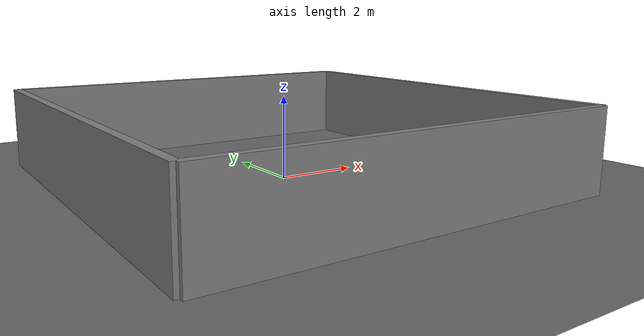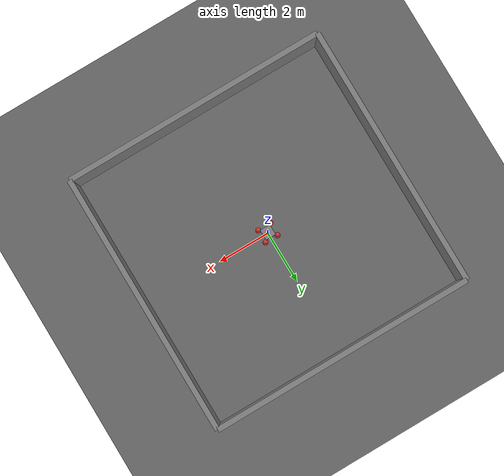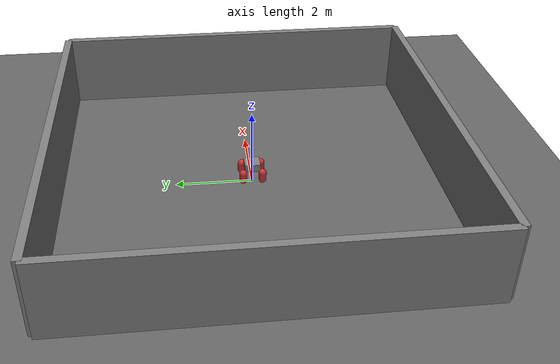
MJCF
<mujoco model="linked_balls">
  <compiler angle="degree" coordinate="local" inertiafromgeom="true"/>
  <option timestep="0.01" iterations="4"/>
  <custom>
    <!-- brax custom params -->
    <numeric data="1000" name="constraint_limit_stiffness"/>
    <numeric data="4000" name="constraint_stiffness"/>
    <numeric data="10" name="constraint_ang_damping"/>
    <numeric data="20" name="constraint_vel_damping"/>
    <numeric data="0.5" name="joint_scale_pos"/>
    <numeric data="0.2" name="joint_scale_ang"/>
    <numeric data="0.0" name="ang_damping"/>
    <numeric data="1" name="spring_mass_scale"/>
    <numeric data="1" name="spring_inertia_scale"/>
    <numeric data="15" name="solver_maxls"/>
  </custom>

  <default>
    <joint armature="1" damping="1" limited="true"/>
  </default>

  <asset>
    <texture builtin="gradient" height="100" rgb1="1 1 1" rgb2="0 0 0" type="skybox" width="100"/>
    <texture builtin="flat" height="1278" mark="cross" markrgb="1 1 1" name="texgeom" random="0.01" rgb1="0.8 0.6 0.4" rgb2="0.8 0.6 0.4" type="cube" width="127"/>
    <texture builtin="checker" height="100" name="texplane" rgb1="0 0 0" rgb2="0.8 0.8 0.8" type="2d" width="100"/>
    <material name="MatPlane" reflectance="0.5" shininess="1" specular="1" texrepeat="60 60" texture="texplane"/>
    <material name="geom" texture="texgeom" texuniform="true"/>
    <material name="grey" reflectance="0.5"/>
  </asset>

  <worldbody>
    <light cutoff="100" diffuse="1 1 1" dir="-0 0 -1.3" directional="true" exponent="1" pos="0 0 1.3" specular=".1 .1 .1"/>
    <geom conaffinity="1" condim="3" material="MatPlane" name="floor" pos="0 0 0" size="40 40 40" type="plane" rgba="0.5 0.5 0.5 1.0"/>
    <body name="torso" pos="0 0 0.5" >
            <joint armature="0" damping="0" limited="false" margin="0.01" name="root" pos="0 0 0" type="free"/>
            <geom name="torso_geom" type="box" size="0.2 0.2 0.1" rgba="0.5 0.5 0.5 1" contype="0" conaffinity="0"/>
            <!-- Limb 1 -->
            <body name="limb1" pos="0.25 0.25 -0.2">
                <joint name="joint1" type="hinge" pos="0 0 0" range="-50 50"/>
                <geom name="limb1_geom" type="capsule" size="0.1 0.1" rgba="0.8 0.2 0.2 1"/>
            </body>
            <!-- Limb 2 -->
            <body name="limb2" pos="0.25 -0.25 -0.2">
                <joint name="joint2" type="hinge" pos="0 0 0" axis="1 0 0" range="-50 50"/>
                <geom name="limb2_geom" type="capsule" size="0.1 0.1" rgba="0.8 0.2 0.2 1"/>
            </body>
            <!-- Limb 3 -->
            <body name="limb3" pos="-0.25 0.25 -0.2">
                <joint name="joint3" type="hinge" pos="0.0 0 0" axis="1 0 0" range="-50 50"/>
                <geom name="limb3_geom" type="capsule" size="0.1 0.1" rgba="0.8 0.2 0.2 1"/>
            </body>
            <!-- Limb 4 -->
            <body name="limb4" pos="-0.25 -0.25 -0.2">
                <joint name="joint4" type="hinge" pos="0.1 0 0" axis="1 0 0" range="-50 50"/>
                <geom name="limb4_geom" type="capsule" size="0.1 0.1" rgba="0.8 0.2 0.2 1"/>
            </body>
    </body>
    <geom conaffinity="2" condim="3" name="wall_1" type="box" size="0.1 5 1" pos="5 0 1"/>
    <geom conaffinity="2" condim="3" name="wall_2" type="box" size="0.1 5 1" pos="0 5 1" quat="0.7071 0 0 0.7071"/>
    <geom conaffinity="2" condim="3" name="wall_3" type="box" size="0.1 5 1" pos="0 -5 1" quat="0.7071 0 0 0.7071"/>
    <geom conaffinity="2" condim="3" name="wall_4" type="box" size="0.1 5 1" pos="-5 0 1"/>
  </worldbody>

  <actuator>

    <motor ctrllimited="true" ctrlrange="-1.0 1.0" joint="joint1" gear="10"/>
    <motor ctrllimited="true" ctrlrange="-1.0 1.0" joint="joint2" gear="10"/>
    <motor ctrllimited="true" ctrlrange="-1.0 1.0" joint="joint3" gear="10"/>
    <motor ctrllimited="true" ctrlrange="-1.0 1.0" joint="joint4" gear="10"/>

  </actuator>

</mujoco>
